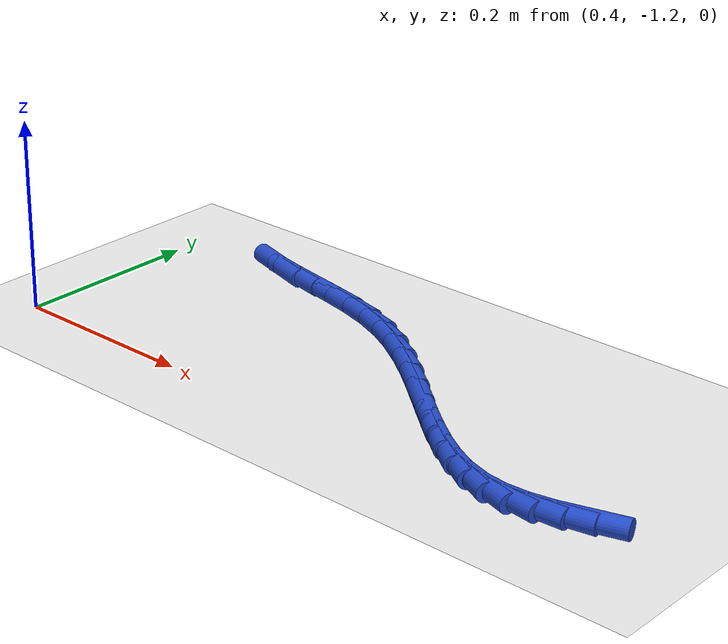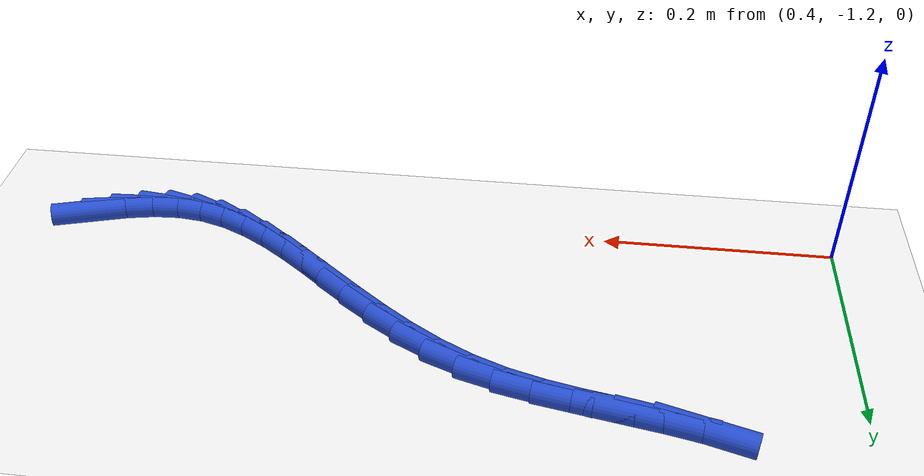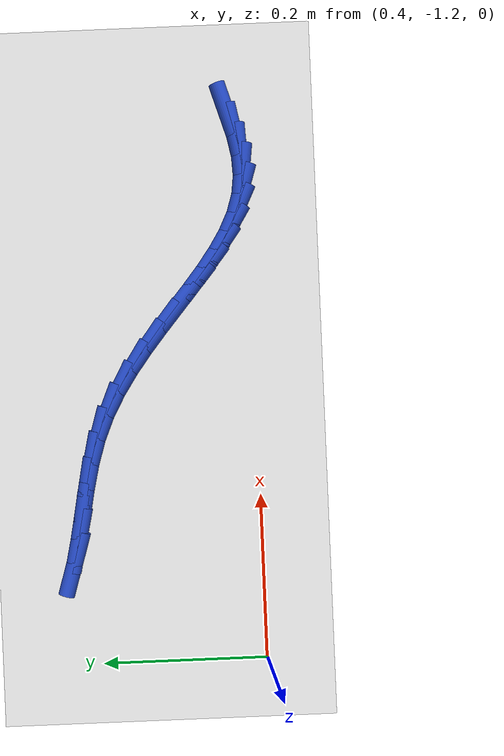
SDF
<sdf version="1.6">
 <world name="default">
  <model name="ground_plane">
   <static>1</static>
   <link name="link">
    <collision name="collision">
     <geometry><plane><normal>0 0 1</normal><size>100 100</size></plane></geometry>
     <surface><friction><ode><mu>100</mu><mu2>50</mu2></ode></friction></surface>
    </collision>
    <visual name="visual">
     <cast_shadows>0</cast_shadows>
     <geometry><plane><normal>0 0 1</normal><size>100 100</size></plane></geometry>
     <material>
      <script><uri>file://media/materials/scripts/gazebo.material</uri><name>Gazebo/WhiteGlow</name></script>
     </material>
    </visual>
   </link>
  </model>
  <model name="line">
   <link name="link_198">
    <pose>1.0632514657225458 -1.1775050424062172 0.01 0 1.57 0.2946630301989496</pose>
    <collision name="collision">
     <geometry><cylinder><radius>0.01</radius><length>0.08</length></cylinder></geometry>
    </collision>
    <visual name="visual">
     <material>
      <script><name>Gazebo/Blue</name><uri>file://media/materials/scripts/gazebo.material</uri></script>
     </material>
     <geometry><cylinder><radius>0.01</radius><length>0.08</length></cylinder></geometry>
    </visual>
   </link>
   <link name="link_199">
    <pose>1.0377431058609505 -1.1852467830386473 0.01 0 1.57 0.1918970330244743</pose>
    <collision name="collision">
     <geometry><cylinder><radius>0.01</radius><length>0.08</length></cylinder></geometry>
    </collision>
    <visual name="visual">
     <material>
      <script><name>Gazebo/Blue</name><uri>file://media/materials/scripts/gazebo.material</uri></script>
     </material>
     <geometry><cylinder><radius>0.01</radius><length>0.08</length></cylinder></geometry>
    </visual>
   </link>
   <link name="link_200">
    <pose>1.0128416278578891 -1.190084835328886 0.01 0 1.57 0.05304581765433494</pose>
    <collision name="collision">
     <geometry><cylinder><radius>0.01</radius><length>0.08</length></cylinder></geometry>
    </collision>
    <visual name="visual">
     <material>
      <script><name>Gazebo/Blue</name><uri>file://media/materials/scripts/gazebo.material</uri></script>
     </material>
     <geometry><cylinder><radius>0.01</radius><length>0.08</length></cylinder></geometry>
    </visual>
   </link>
   <link name="link_201">
    <pose>0.9885811976026603 -1.1913729581136598 0.01 0 1.57 -0.12196584720820039</pose>
    <collision name="collision">
     <geometry><cylinder><radius>0.01</radius><length>0.08</length></cylinder></geometry>
    </collision>
    <visual name="visual">
     <material>
      <script><name>Gazebo/Blue</name><uri>file://media/materials/scripts/gazebo.material</uri></script>
     </material>
     <geometry><cylinder><radius>0.01</radius><length>0.08</length></cylinder></geometry>
    </visual>
   </link>
   <link name="link_202">
    <pose>0.9649930836618008 -1.1884816629258406 0.01 0 1.57 -0.3013308597148058</pose>
    <collision name="collision">
     <geometry><cylinder><radius>0.01</radius><length>0.08</length></cylinder></geometry>
    </collision>
    <visual name="visual">
     <material>
      <script><name>Gazebo/Blue</name><uri>file://media/materials/scripts/gazebo.material</uri></script>
     </material>
     <geometry><cylinder><radius>0.01</radius><length>0.08</length></cylinder></geometry>
    </visual>
   </link>
   <link name="link_203">
    <pose>0.9420120815482126 -1.1813392810117347 0.01 0 1.57 -0.44620678834955174</pose>
    <collision name="collision">
     <geometry><cylinder><radius>0.01</radius><length>0.08</length></cylinder></geometry>
    </collision>
    <visual name="visual">
     <material>
      <script><name>Gazebo/Blue</name><uri>file://media/materials/scripts/gazebo.material</uri></script>
     </material>
     <geometry><cylinder><radius>0.01</radius><length>0.08</length></cylinder></geometry>
    </visual>
   </link>
   <link name="link_204">
    <pose>0.9194562863214485 -1.1705489207807291 0.01 0 1.57 -0.5535945051224839</pose>
    <collision name="collision">
     <geometry><cylinder><radius>0.01</radius><length>0.08</length></cylinder></geometry>
    </collision>
    <visual name="visual">
     <material>
      <script><name>Gazebo/Blue</name><uri>file://media/materials/scripts/gazebo.material</uri></script>
     </material>
     <geometry><cylinder><radius>0.01</radius><length>0.08</length></cylinder></geometry>
    </visual>
   </link>
   <link name="link_205">
    <pose>0.897136804234843 -1.1567541008265732 0.01 0 1.57 -0.6275587626305524</pose>
    <collision name="collision">
     <geometry><cylinder><radius>0.01</radius><length>0.08</length></cylinder></geometry>
    </collision>
    <visual name="visual">
     <material>
      <script><name>Gazebo/Blue</name><uri>file://media/materials/scripts/gazebo.material</uri></script>
     </material>
     <geometry><cylinder><radius>0.01</radius><length>0.08</length></cylinder></geometry>
    </visual>
   </link>
   <link name="link_206">
    <pose>0.8748647415417279 -1.1405983397430153 0.01 0 1.57 -0.6731707243482274</pose>
    <collision name="collision">
     <geometry><cylinder><radius>0.01</radius><length>0.08</length></cylinder></geometry>
    </collision>
    <visual name="visual">
     <material>
      <script><name>Gazebo/Blue</name><uri>file://media/materials/scripts/gazebo.material</uri></script>
     </material>
     <geometry><cylinder><radius>0.01</radius><length>0.08</length></cylinder></geometry>
    </visual>
   </link>
   <link name="link_207">
    <pose>0.8524512044954367 -1.122725156123805 0.01 0 1.57 -0.6945782392385583</pose>
    <collision name="collision">
     <geometry><cylinder><radius>0.01</radius><length>0.08</length></cylinder></geometry>
    </collision>
    <visual name="visual">
     <material>
      <script><name>Gazebo/Blue</name><uri>file://media/materials/scripts/gazebo.material</uri></script>
     </material>
     <geometry><cylinder><radius>0.01</radius><length>0.08</length></cylinder></geometry>
    </visual>
   </link>
   <link name="link_208">
    <pose>0.8297072993493021 -1.1037780685626906 0.01 0 1.57 -0.6945226112479459</pose>
    <collision name="collision">
     <geometry><cylinder><radius>0.01</radius><length>0.08</length></cylinder></geometry>
    </collision>
    <visual name="visual">
     <material>
      <script><name>Gazebo/Blue</name><uri>file://media/materials/scripts/gazebo.material</uri></script>
     </material>
     <geometry><cylinder><radius>0.01</radius><length>0.08</length></cylinder></geometry>
    </visual>
   </link>
   <link name="link_209">
    <pose>0.8064441323566571 -1.0844005956534206 0.01 0 1.57 -0.6744173417071309</pose>
    <collision name="collision">
     <geometry><cylinder><radius>0.01</radius><length>0.08</length></cylinder></geometry>
    </collision>
    <visual name="visual">
     <material>
      <script><name>Gazebo/Blue</name><uri>file://media/materials/scripts/gazebo.material</uri></script>
     </material>
     <geometry><cylinder><radius>0.01</radius><length>0.08</length></cylinder></geometry>
    </visual>
   </link>
   <link name="link_210">
    <pose>0.7824728097708344 -1.0652362559897441 0.01 0 1.57 -0.6345998207094404</pose>
    <collision name="collision">
     <geometry><cylinder><radius>0.01</radius><length>0.08</length></cylinder></geometry>
    </collision>
    <visual name="visual">
     <material>
      <script><name>Gazebo/Blue</name><uri>file://media/materials/scripts/gazebo.material</uri></script>
     </material>
     <geometry><cylinder><radius>0.01</radius><length>0.08</length></cylinder></geometry>
    </visual>
   </link>
   <link name="link_211">
    <pose>0.7576044378451673 -1.0469285681654104 0.01 0 1.57 -0.5746727079616185</pose>
    <collision name="collision">
     <geometry><cylinder><radius>0.01</radius><length>0.08</length></cylinder></geometry>
    </collision>
    <visual name="visual">
     <material>
      <script><name>Gazebo/Blue</name><uri>file://media/materials/scripts/gazebo.material</uri></script>
     </material>
     <geometry><cylinder><radius>0.01</radius><length>0.08</length></cylinder></geometry>
    </visual>
   </link>
   <link name="link_212">
    <pose>0.7316501228329885 -1.0301210507741678 0.01 0 1.57 -0.4939976640768945</pose>
    <collision name="collision">
     <geometry><cylinder><radius>0.01</radius><length>0.08</length></cylinder></geometry>
    </collision>
    <visual name="visual">
     <material>
      <script><name>Gazebo/Blue</name><uri>file://media/materials/scripts/gazebo.material</uri></script>
     </material>
     <geometry><cylinder><radius>0.01</radius><length>0.08</length></cylinder></geometry>
    </visual>
   </link>
   <link name="link_213">
    <pose>0.7044209709876303 -1.0154572224097653 0.01 0 1.57 -0.39269418548704327</pose>
    <collision name="collision">
     <geometry><cylinder><radius>0.01</radius><length>0.08</length></cylinder></geometry>
    </collision>
    <visual name="visual">
     <material>
      <script><name>Gazebo/Blue</name><uri>file://media/materials/scripts/gazebo.material</uri></script>
     </material>
     <geometry><cylinder><radius>0.01</radius><length>0.08</length></cylinder></geometry>
    </visual>
   </link>
   <link name="link_214">
    <pose>0.6757318431246389 -1.0035739611244736 0.01 0 1.57 -0.2913292380725705</pose>
    <collision name="collision">
     <geometry><cylinder><radius>0.01</radius><length>0.08</length></cylinder></geometry>
    </collision>
    <visual name="visual">
     <material>
      <script><name>Gazebo/Blue</name><uri>file://media/materials/scripts/gazebo.material</uri></script>
     </material>
     <geometry><cylinder><radius>0.01</radius><length>0.08</length></cylinder></geometry>
    </visual>
   </link>
   <link name="link_215">
    <pose>0.6457022813148016 -0.9945692676264022 0.01 0 1.57 -0.22263840270525903</pose>
    <collision name="collision">
     <geometry><cylinder><radius>0.01</radius><length>0.08</length></cylinder></geometry>
    </collision>
    <visual name="visual">
     <material>
      <script><name>Gazebo/Blue</name><uri>file://media/materials/scripts/gazebo.material</uri></script>
     </material>
     <geometry><cylinder><radius>0.01</radius><length>0.08</length></cylinder></geometry>
    </visual>
   </link>
   <link name="link_216">
    <pose>0.6149764804502424 -0.9876132105172329 0.01 0 1.57 -0.18748383561075102</pose>
    <collision name="collision">
     <geometry><cylinder><radius>0.01</radius><length>0.08</length></cylinder></geometry>
    </collision>
    <visual name="visual">
     <material>
      <script><name>Gazebo/Blue</name><uri>file://media/materials/scripts/gazebo.material</uri></script>
     </material>
     <geometry><cylinder><radius>0.01</radius><length>0.08</length></cylinder></geometry>
    </visual>
   </link>
   <link name="link_217">
    <pose>0.584250500078544 -0.9817841274919735 0.01 0 1.57 -0.18512685739461437</pose>
    <collision name="collision">
     <geometry><cylinder><radius>0.01</radius><length>0.08</length></cylinder></geometry>
    </collision>
    <visual name="visual">
     <material>
      <script><name>Gazebo/Blue</name><uri>file://media/materials/scripts/gazebo.material</uri></script>
     </material>
     <geometry><cylinder><radius>0.01</radius><length>0.08</length></cylinder></geometry>
    </visual>
   </link>
   <link name="link_218">
    <pose>0.5542203997472895 -0.9761603562456331 0.01 0 1.57 -0.2178730633493549</pose>
    <collision name="collision">
     <geometry><cylinder><radius>0.01</radius><length>0.08</length></cylinder></geometry>
    </collision>
    <visual name="visual">
     <material>
      <script><name>Gazebo/Blue</name><uri>file://media/materials/scripts/gazebo.material</uri></script>
     </material>
     <geometry><cylinder><radius>0.01</radius><length>0.08</length></cylinder></geometry>
    </visual>
   </link>
   <link name="link_219">
    <pose>0.5255822390040619 -0.9698202344732197 0.01 0 1.57 -0.29190891927925394</pose>
    <collision name="collision">
     <geometry><cylinder><radius>0.01</radius><length>0.08</length></cylinder></geometry>
    </collision>
    <visual name="visual">
     <material>
      <script><name>Gazebo/Blue</name><uri>file://media/materials/scripts/gazebo.material</uri></script>
     </material>
     <geometry><cylinder><radius>0.01</radius><length>0.08</length></cylinder></geometry>
    </visual>
   </link>
  </model>
 </world>
</sdf>
